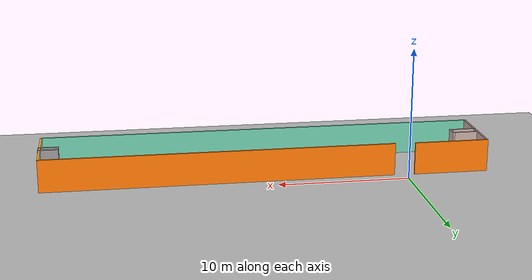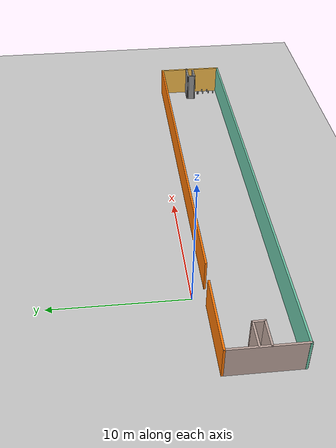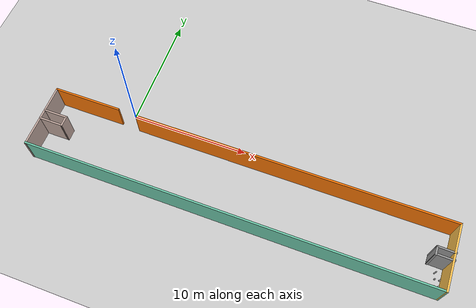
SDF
<sdf version="1.6">
 <world name="default">
  <model name="ground_plane">
   <static>1</static>
   <link name="link">
    <collision name="collision">
     <geometry><plane><normal>0 0 1</normal><size>100 100</size></plane></geometry>
     <surface>
      <contact><collide_bitmask>65535</collide_bitmask></contact>
      <friction><ode><mu>100</mu><mu2>50</mu2></ode></friction>
     </surface>
    </collision>
    <visual name="visual">
     <cast_shadows>0</cast_shadows>
     <geometry><plane><normal>0 0 1</normal><size>100 100</size></plane></geometry>
     <material>
      <script><uri>file://media/materials/scripts/gazebo.material</uri><name>Gazebo/Grey</name></script>
     </material>
    </visual>
   </link>
  </model>
  <model name="sim">
   <pose>10.5975 -3.65916 0 0 -0 0</pose>
   <link name="Wall_10">
    <collision name="Wall_10_Collision">
     <geometry><box><size>5.5 0.15 2.5</size></box></geometry>
     <pose>0 0 1.25 0 -0 0</pose>
    </collision>
    <visual name="Wall_10_Visual">
     <pose>0 0 1.25 0 -0 0</pose>
     <geometry><box><size>5.5 0.15 2.5</size></box></geometry>
     <material>
      <script><uri>file://media/materials/scripts/gazebo.material</uri><name>Gazebo/Grey</name></script>
      <ambient>0.760784 0.662745 0.627451 1</ambient>
     </material>
     <meta><layer>0</layer></meta>
    </visual>
    <pose>-16.963 0.038446 0 0 -0 -1.5708</pose>
   </link>
   <link name="Wall_12">
    <collision name="Wall_12_Collision">
     <geometry><box><size>5.5 0.15 2.5</size></box></geometry>
     <pose>0 0 1.25 0 -0 0</pose>
    </collision>
    <visual name="Wall_12_Visual">
     <pose>0 0 1.25 0 -0 0</pose>
     <geometry><box><size>5.5 0.15 2.5</size></box></geometry>
     <material>
      <script><uri>file://media/materials/scripts/gazebo.material</uri><name>Gazebo/Grey</name></script>
      <ambient>1 0.764706 0.305882 1</ambient>
     </material>
     <meta><layer>0</layer></meta>
    </visual>
    <pose>16.9292 -0.038221 0 0 -0 -1.5708</pose>
   </link>
   <link name="Wall_15">
    <collision name="Wall_15_Collision">
     <geometry><box><size>2 0.15 2.5</size></box></geometry>
     <pose>0 0 1.25 0 -0 0</pose>
    </collision>
    <visual name="Wall_15_Visual">
     <pose>0 0 1.25 0 -0 0</pose>
     <geometry><box><size>2 0.15 2.5</size></box></geometry>
     <material>
      <script><uri>file://media/materials/scripts/gazebo.material</uri><name>Gazebo/Grey</name></script>
      <ambient>0.760784 0.662745 0.627451 1</ambient>
     </material>
     <meta><layer>0</layer></meta>
    </visual>
    <pose>-15.9547 0.568453 0 0 -0 0</pose>
   </link>
   <link name="Wall_18">
    <collision name="Wall_18_Collision">
     <geometry><box><size>2.07812 0.15 2.5</size></box></geometry>
     <pose>0 0 1.25 0 -0 0</pose>
    </collision>
    <visual name="Wall_18_Visual">
     <pose>0 0 1.25 0 -0 0</pose>
     <geometry><box><size>2.07812 0.15 2.5</size></box></geometry>
     <material>
      <script><uri>file://media/materials/scripts/gazebo.material</uri><name>Gazebo/Grey</name></script>
      <ambient>0.760784 0.662745 0.627451 1</ambient>
     </material>
     <meta><layer>0</layer></meta>
    </visual>
    <pose>-15.986 -0.219047 0 0 -0 0</pose>
   </link>
   <link name="Wall_19">
    <collision name="Wall_19_Collision">
     <geometry><box><size>0.945351 0.15 2.5</size></box></geometry>
     <pose>0 0 1.25 0 -0 0</pose>
    </collision>
    <visual name="Wall_19_Visual">
     <pose>0 0 1.25 0 -0 0</pose>
     <geometry><box><size>0.945351 0.15 2.5</size></box></geometry>
     <material>
      <script><uri>file://media/materials/scripts/gazebo.material</uri><name>Gazebo/Grey</name></script>
      <ambient>0.760784 0.662745 0.627451 1</ambient>
     </material>
     <meta><layer>0</layer></meta>
    </visual>
    <pose>-15.018 0.178609 0 0 -0 1.58062</pose>
   </link>
   <link name="Wall_21">
    <collision name="Wall_21_Collision">
     <geometry><box><size>1.5364 0.15 2.5</size></box></geometry>
     <pose>0 0 1.25 0 -0 0</pose>
    </collision>
    <visual name="Wall_21_Visual">
     <pose>0 0 1.25 0 -0 0</pose>
     <geometry><box><size>1.5364 0.15 2.5</size></box></geometry>
     <material>
      <script><uri>file://media/materials/scripts/gazebo.material</uri><name>Gazebo/Grey</name></script>
      <ambient>1 1 1 1</ambient>
     </material>
     <meta><layer>0</layer></meta>
    </visual>
    <pose>16.2938 0.302386 0 0 -0 3.11567</pose>
   </link>
   <link name="Wall_24">
    <collision name="Wall_24_Collision">
     <geometry><box><size>0.75 0.15 2.5</size></box></geometry>
     <pose>0 0 1.25 0 -0 0</pose>
    </collision>
    <visual name="Wall_24_Visual">
     <pose>0 0 1.25 0 -0 0</pose>
     <geometry><box><size>0.75 0.15 2.5</size></box></geometry>
     <material>
      <script><uri>file://media/materials/scripts/gazebo.material</uri><name>Gazebo/Grey</name></script>
      <ambient>1 1 1 1</ambient>
     </material>
     <meta><layer>0</layer></meta>
    </visual>
    <pose>15.6009 -0.015582 0 0 -0 -1.5708</pose>
   </link>
   <link name="Wall_26">
    <collision name="Wall_26_Collision">
     <geometry><box><size>1.5364 0.15 2.5</size></box></geometry>
     <pose>0 0 1.25 0 -0 0</pose>
    </collision>
    <visual name="Wall_26_Visual">
     <pose>0 0 1.25 0 -0 0</pose>
     <geometry><box><size>1.5364 0.15 2.5</size></box></geometry>
     <material>
      <script><uri>file://media/materials/scripts/gazebo.material</uri><name>Gazebo/Grey</name></script>
      <ambient>1 1 1 1</ambient>
     </material>
     <meta><layer>0</layer></meta>
    </visual>
    <pose>16.2938 -0.297614 0 0 -0 -0.025924</pose>
   </link>
   <link name="Wall_29">
    <collision name="Wall_29_Collision">
     <geometry><box><size>26.75 0.15 2.5</size></box></geometry>
     <pose>0 0 1.25 0 -0 0</pose>
    </collision>
    <visual name="Wall_29_Visual">
     <pose>0 0 1.25 0 -0 0</pose>
     <geometry><box><size>26.75 0.15 2.5</size></box></geometry>
     <material>
      <script><uri>file://media/materials/scripts/gazebo.material</uri><name>Gazebo/Grey</name></script>
      <ambient>0.996078 0.47451 0.0196078 1</ambient>
     </material>
     <meta><layer>0</layer></meta>
    </visual>
    <pose>3.62922 2.63678 0 0 -0 0</pose>
   </link>
   <link name="Wall_32">
    <collision name="Wall_32_Collision">
     <geometry><box><size>5.75 0.15 2.5</size></box></geometry>
     <pose>0 0 1.25 0 -0 0</pose>
    </collision>
    <visual name="Wall_32_Visual">
     <pose>0 0 1.25 0 -0 0</pose>
     <geometry><box><size>5.75 0.15 2.5</size></box></geometry>
     <material>
      <script><uri>file://media/materials/scripts/gazebo.material</uri><name>Gazebo/Grey</name></script>
      <ambient>0.996078 0.47451 0.0196078 1</ambient>
     </material>
     <meta><layer>0</layer></meta>
    </visual>
    <pose>-14.163 2.71345 0 0 -0 0</pose>
   </link>
   <link name="Wall_6">
    <collision name="Wall_6_Collision">
     <geometry><box><size>34.0678 0.15 2.5</size></box></geometry>
     <pose>0 0 1.25 0 -0 0</pose>
    </collision>
    <visual name="Wall_6_Visual">
     <pose>0 0 1.25 0 -0 0</pose>
     <geometry><box><size>34.0678 0.15 2.5</size></box></geometry>
     <material>
      <script><uri>file://media/materials/scripts/gazebo.material</uri><name>Gazebo/Grey</name></script>
      <ambient>0.435294 0.796078 0.67451 1</ambient>
     </material>
     <meta><layer>0</layer></meta>
    </visual>
    <pose>-0.029665 -2.66211 0 0 -0 -0.003014</pose>
   </link>
   <static>1</static>
  </model>
  <model name="beer">
   <link name="link">
    <pose>0 0 0.115 0 -0 0</pose>
    <inertial>
     <mass>0.39</mass>
     <inertia><ixx>0.00058</ixx><ixy>0</ixy><ixz>0</ixz><iyy>0.00058</iyy><iyz>0</iyz><izz>0.00019</izz></inertia>
    </inertial>
    <collision name="collision">
     <geometry><cylinder><radius>0.055</radius><length>0.23</length></cylinder></geometry>
    </collision>
    <visual name="visual">
     <geometry><cylinder><radius>0.055</radius><length>0.23</length></cylinder></geometry>
     <material>
      <script>
       <uri>model://beer/materials/scripts</uri>
       <uri>model://beer/materials/textures</uri>
       <name>Beer/Diffuse</name>
      </script>
     </material>
    </visual>
   </link>
   <pose>27.3644 -4.96602 0.001791 -0.028869 0.015093 -0.173176</pose>
  </model>
  <model name="beer_0">
   <link name="link">
    <pose>0 0 0.115 0 -0 0</pose>
    <inertial>
     <mass>0.39</mass>
     <inertia><ixx>0.00058</ixx><ixy>0</ixy><ixz>0</ixz><iyy>0.00058</iyy><iyz>0</iyz><izz>0.00019</izz></inertia>
    </inertial>
    <collision name="collision">
     <geometry><cylinder><radius>0.055</radius><length>0.23</length></cylinder></geometry>
    </collision>
    <visual name="visual">
     <geometry><cylinder><radius>0.055</radius><length>0.23</length></cylinder></geometry>
     <material>
      <script>
       <uri>model://beer/materials/scripts</uri>
       <uri>model://beer/materials/textures</uri>
       <name>Beer/Diffuse</name>
      </script>
     </material>
    </visual>
   </link>
   <pose>27.0068 -5.5387 0.001356 8e-05 0.024664 -0.602346</pose>
  </model>
  <model name="beer_1">
   <link name="link">
    <pose>0 0 0.115 0 -0 0</pose>
    <inertial>
     <mass>0.39</mass>
     <inertia><ixx>0.00058</ixx><ixy>0</ixy><ixz>0</ixz><iyy>0.00058</iyy><iyz>0</iyz><izz>0.00019</izz></inertia>
    </inertial>
    <collision name="collision">
     <geometry><cylinder><radius>0.055</radius><length>0.23</length></cylinder></geometry>
    </collision>
    <visual name="visual">
     <geometry><cylinder><radius>0.055</radius><length>0.23</length></cylinder></geometry>
     <material>
      <script>
       <uri>model://beer/materials/scripts</uri>
       <uri>model://beer/materials/textures</uri>
       <name>Beer/Diffuse</name>
      </script>
     </material>
    </visual>
   </link>
   <pose>27.0014 -4.99921 -3e-06 1e-06 0 -1.3e-05</pose>
  </model>
  <model name="beer_2">
   <link name="link">
    <pose>0 0 0.115 0 -0 0</pose>
    <inertial>
     <mass>0.39</mass>
     <inertia><ixx>0.00058</ixx><ixy>0</ixy><ixz>0</ixz><iyy>0.00058</iyy><iyz>0</iyz><izz>0.00019</izz></inertia>
    </inertial>
    <collision name="collision">
     <geometry><cylinder><radius>0.055</radius><length>0.23</length></cylinder></geometry>
    </collision>
    <visual name="visual">
     <geometry><cylinder><radius>0.055</radius><length>0.23</length></cylinder></geometry>
     <material>
      <script>
       <uri>model://beer/materials/scripts</uri>
       <uri>model://beer/materials/textures</uri>
       <name>Beer/Diffuse</name>
      </script>
     </material>
    </visual>
   </link>
   <pose>27.024 -6.00035 -2e-06 0 -0 -0.001057</pose>
  </model>
  <model name="beer_3">
   <link name="link">
    <pose>0 0 0.115 0 -0 0</pose>
    <inertial>
     <mass>0.39</mass>
     <inertia><ixx>0.00058</ixx><ixy>0</ixy><ixz>0</ixz><iyy>0.00058</iyy><iyz>0</iyz><izz>0.00019</izz></inertia>
    </inertial>
    <collision name="collision">
     <geometry><cylinder><radius>0.055</radius><length>0.23</length></cylinder></geometry>
    </collision>
    <visual name="visual">
     <geometry><cylinder><radius>0.055</radius><length>0.23</length></cylinder></geometry>
     <material>
      <script>
       <uri>model://beer/materials/scripts</uri>
       <uri>model://beer/materials/textures</uri>
       <name>Beer/Diffuse</name>
      </script>
     </material>
    </visual>
   </link>
   <pose>26.9018 -4.53037 -8e-06 -1e-06 0 0.003255</pose>
  </model>
  <model name="beer_4">
   <link name="link">
    <pose>0 0 0.115 0 -0 0</pose>
    <inertial>
     <mass>0.39</mass>
     <inertia><ixx>0.00058</ixx><ixy>0</ixy><ixz>0</ixz><iyy>0.00058</iyy><iyz>0</iyz><izz>0.00019</izz></inertia>
    </inertial>
    <collision name="collision">
     <geometry><cylinder><radius>0.055</radius><length>0.23</length></cylinder></geometry>
    </collision>
    <visual name="visual">
     <geometry><cylinder><radius>0.055</radius><length>0.23</length></cylinder></geometry>
     <material>
      <script>
       <uri>model://beer/materials/scripts</uri>
       <uri>model://beer/materials/textures</uri>
       <name>Beer/Diffuse</name>
      </script>
     </material>
    </visual>
   </link>
   <pose>27.3725 -5.46123 -7e-06 -1e-06 0 0.000482</pose>
  </model>
  <model name="beer_5">
   <link name="link">
    <pose>0 0 0.115 0 -0 0</pose>
    <inertial>
     <mass>0.39</mass>
     <inertia><ixx>0.00058</ixx><ixy>0</ixy><ixz>0</ixz><iyy>0.00058</iyy><iyz>0</iyz><izz>0.00019</izz></inertia>
    </inertial>
    <collision name="collision">
     <geometry><cylinder><radius>0.055</radius><length>0.23</length></cylinder></geometry>
    </collision>
    <visual name="visual">
     <geometry><cylinder><radius>0.055</radius><length>0.23</length></cylinder></geometry>
     <material>
      <script>
       <uri>model://beer/materials/scripts</uri>
       <uri>model://beer/materials/textures</uri>
       <name>Beer/Diffuse</name>
      </script>
     </material>
    </visual>
   </link>
   <pose>26.9874 -4.4292 0.000249 -0.003278 0.003141 -0.079076</pose>
  </model>
 </world>
</sdf>
